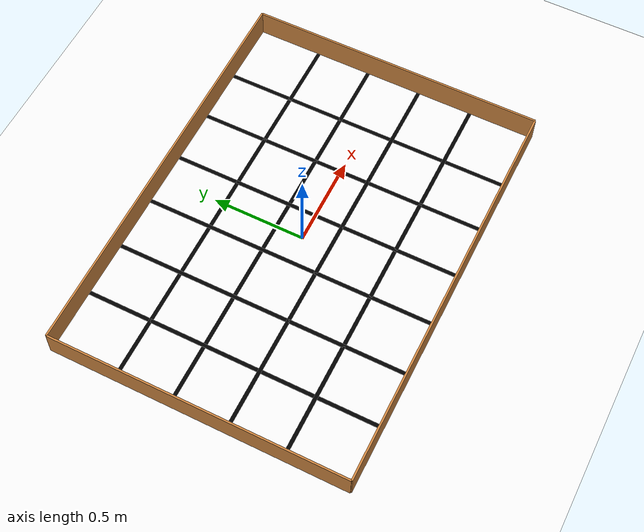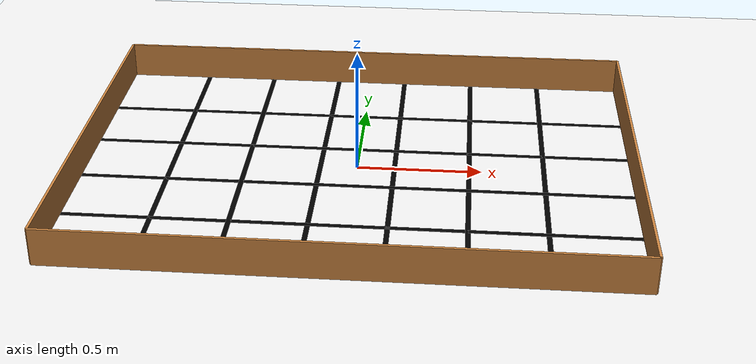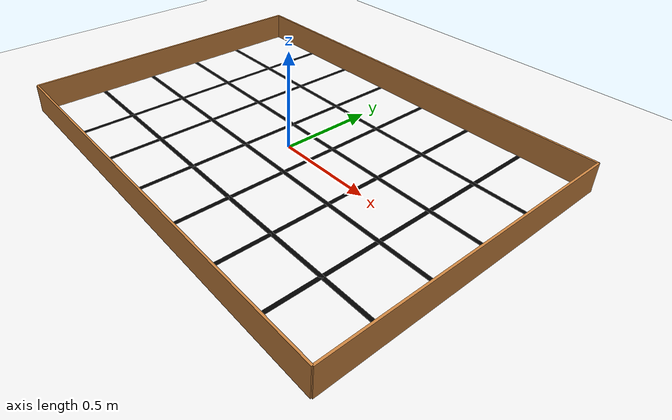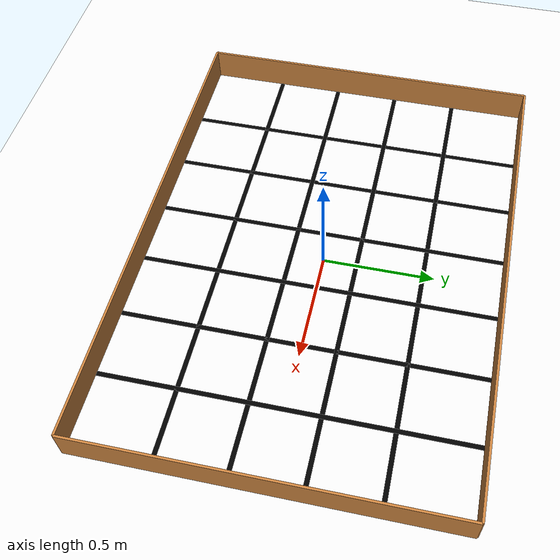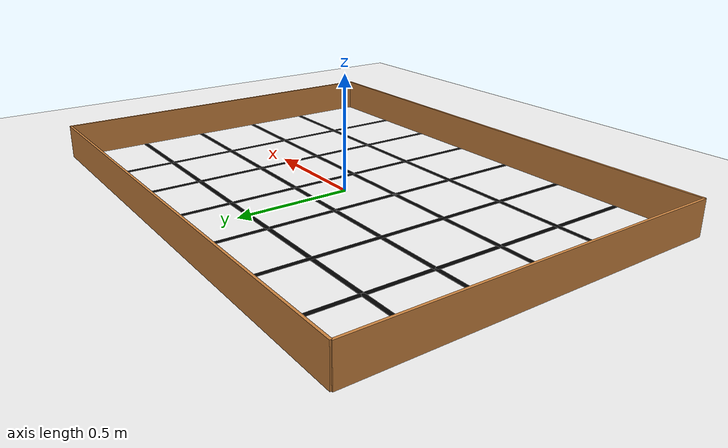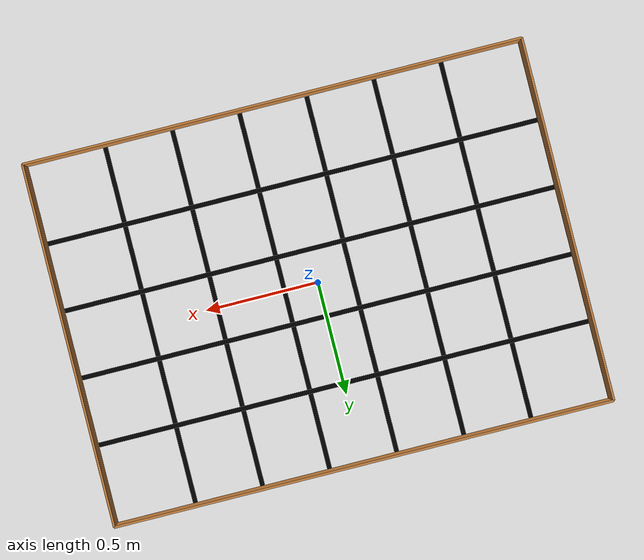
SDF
<?xml version="1.0"?>
<sdf version="1.7">
  <world name="peno_environment">

    <!-- Necessary plugins -->
    <physics name="1ms" type="ignored">
      <max_step_size>0.001</max_step_size>
      <real_time_factor>1.0</real_time_factor>
    </physics>
    <plugin
      filename="gz-sim-physics-system"
      name="gz::sim::systems::Physics">
    </plugin>
    <plugin
      filename="gz-sim-scene-broadcaster-system"
      name="gz::sim::systems::SceneBroadcaster">
    </plugin>
    <plugin
      filename="gz-sim-user-commands-system"
      name="gz::sim::systems::UserCommands">
    </plugin>
    <plugin
      filename="gz-sim-sensors-system"
      name="gz::sim::systems::Sensors">
      <render_engine>ogre2</render_engine>
    </plugin>

    <!-- Sun -->
    <light type="directional" name="sun">
      <cast_shadows>true</cast_shadows>
      <pose>0 4 10 0 0 0</pose>
      <diffuse>1 1 1 1</diffuse>
      <specular>0.5 0.5 0.5 1</specular>
      <attenuation>
        <range>1000</range>
        <constant>0.9</constant>
        <linear>0.01</linear>
        <quadratic>0.001</quadratic>
      </attenuation>
      <direction>-0.5 0.1 -0.9</direction>
    </light>

    <!-- Ground plane -->
    <model name="ground_plane">
      <static>true</static>
      <link name="link">
        <visual name="visual">
          <geometry>
            <plane>
              <normal>0 0 1</normal>
              <size>2.2 1.6</size>
            </plane>
          </geometry>
          <material>
            <ambient>1.0 1.0 1.0 1</ambient>
            <diffuse>0.95 0.95 0.95 1</diffuse>
            <specular>0.03 0.03 0.03 1</specular>
            <emissive>0.1 0.1 0.1 1</emissive>
          </material>
        </visual>
        <collision name="collision">
          <geometry>
            <plane>
              <normal>0 0 1</normal>
              <size>2.2 1.6</size>
            </plane>
          </geometry>
          <surface>
            <friction>
              <ode>
                <mu>0.7</mu> <!-- Static friction -->
                <mu2>0.5</mu2> <!-- Kinetic friction-->
              </ode>
            </friction>
          </surface>
        </collision>
      </link>
    </model>

    <!-- Walls -->
    <model name="wall_north">
      <static>true</static>
      <link name="link">
        <visual name="visual">
          <geometry>
            <box>
              <size>2.2 0.01 0.15</size>
            </box>
          </geometry>
          <pose>0 0.8 0.075 0 0 0</pose> <!-- North wall -->
          <material>
            <ambient>0.8 0.52 0.25 1</ambient> <!-- Light brown, like wood -->
            <diffuse>0.8 0.52 0.25 1</diffuse> <!-- Light brown, like wood -->
          </material>
        </visual>
        <collision name="collision">
          <geometry>
            <box>
              <size>2.2 0.01 0.15</size>
            </box>
          </geometry>
          <pose>0 0.8 0.075 0 0 0</pose> <!-- Same pose as visual -->
        </collision>
      </link>
    </model>

    <model name="wall_south">
      <static>true</static>
      <link name="link">
        <visual name="visual">
          <geometry>
            <box>
              <size>2.2 0.01 0.15</size>
            </box>
          </geometry>
          <pose>0 -0.8 0.075 0 0 0</pose> <!-- South wall -->
          <material>
            <ambient>0.8 0.52 0.25 1</ambient> <!-- Light brown, like wood -->
            <diffuse>0.8 0.52 0.25 1</diffuse> <!-- Light brown, like wood -->
          </material>
        </visual>
        <collision name="collision">
          <geometry>
            <box>
              <size>2.2 0.01 0.15</size>
            </box>
          </geometry>
          <pose>0 -0.8 0.075 0 0 0</pose> <!-- Same pose as visual -->
        </collision>
      </link>
    </model>

    <model name="wall_east">
      <static>true</static>
      <link name="link">
        <visual name="visual">
          <geometry>
            <box>
              <size>0.01 1.6 0.15</size>
            </box>
          </geometry>
          <pose>1.1 0 0.075 0 0 0</pose> <!-- East wall -->
          <material>
            <ambient>0.8 0.52 0.25 1</ambient> <!-- Light brown, like wood -->
            <diffuse>0.8 0.52 0.25 1</diffuse> <!-- Light brown, like wood -->
          </material>
        </visual>
        <collision name="collision">
          <geometry>
            <box>
              <size>0.01 1.6 0.15</size>
            </box>
          </geometry>
          <pose>1.1 0 0.075 0 0 0</pose> <!-- Same pose as visual -->
        </collision>
      </link>
    </model>

    <model name="wall_west">
      <static>true</static>
      <link name="link">
        <visual name="visual">
          <geometry>
            <box>
              <size>0.01 1.6 0.15</size>
            </box>
          </geometry>
          <pose>-1.1 0 0.075 0 0 0</pose> <!-- West wall -->
          <material>
            <ambient>0.8 0.52 0.25 1</ambient> <!-- Light brown, like wood -->
            <diffuse>0.8 0.52 0.25 1</diffuse> <!-- Light brown, like wood -->
          </material>
        </visual>
        <collision name="collision">
          <geometry>
            <box>
              <size>0.01 1.6 0.15</size>
            </box>
          </geometry>
          <pose>-1.1 0 0.075 0 0 0</pose> <!-- Same pose as visual -->
        </collision>
      </link>
    </model>

    <!-- Grid Lines -->
    <!-- Horizontal grid lines -->
    <model name="gridline_h2">
      <static>true</static>
      <link name="link">
        <visual name="visual">
          <geometry>
            <box>
              <size>2.2 0.02 0.001</size>
            </box>
          </geometry>
          <pose>0 -0.45 0 0 0 0</pose>
          <material>
            <ambient>0 0 0 1</ambient> <!-- Black -->
            <diffuse>0 0 0 1</diffuse> <!-- Black -->
          </material>
        </visual>
      </link>
    </model>

    <model name="gridline_h3">
      <static>true</static>
      <link name="link">
        <visual name="visual">
          <geometry>
            <box>
              <size>2.2 0.02 0.001</size>
            </box>
          </geometry>
          <pose>0 -0.15 0 0 0 0</pose>
          <material>
            <ambient>0 0 0 1</ambient> <!-- Black -->
            <diffuse>0 0 0 1</diffuse> <!-- Black -->
          </material>
        </visual>
      </link>
    </model>

    <model name="gridline_h4">
      <static>true</static>
      <link name="link">
        <visual name="visual">
          <geometry>
            <box>
              <size>2.2 0.02 0.001</size>
            </box>
          </geometry>
          <pose>0 0.15 0 0 0 0</pose>
          <material>
            <ambient>0 0 0 1</ambient> <!-- Black -->
            <diffuse>0 0 0 1</diffuse> <!-- Black -->
          </material>
        </visual>
      </link>
    </model>

    <model name="gridline_h5">
      <static>true</static>
      <link name="link">
        <visual name="visual">
          <geometry>
            <box>
              <size>2.2 0.02 0.001</size>
            </box>
          </geometry>
          <pose>0 0.45 0 0 0 0</pose>
          <material>
            <ambient>0 0 0 1</ambient> <!-- Black -->
            <diffuse>0 0 0 1</diffuse> <!-- Black -->
          </material>
        </visual>
      </link>
    </model>

    <!-- Vertical grid lines -->
    <model name="gridline_v1">
      <static>true</static>
      <link name="link">
        <visual name="visual">
          <geometry>
            <box>
              <size>0.02 1.6 0.001</size>
            </box>
          </geometry>
          <pose>0.15 0 0 0 0 0</pose>
          <material>
            <ambient>0 0 0 1</ambient> <!-- Black -->
            <diffuse>0 0 0 1</diffuse> <!-- Black -->
          </material>
        </visual>
      </link>
    </model>

    <model name="gridline_v2">
      <static>true</static>
      <link name="link">
        <visual name="visual">
          <geometry>
            <box>
              <size>0.02 1.6 0.001</size>
            </box>
          </geometry>
          <pose>-0.15 0 0 0 0 0</pose>
          <material>
            <ambient>0 0 0 1</ambient> <!-- Black -->
            <diffuse>0 0 0 1</diffuse> <!-- Black -->
          </material>
        </visual>
      </link>
    </model>

    <model name="gridline_v3">
      <static>true</static>
      <link name="link">
        <visual name="visual">
          <geometry>
            <box>
              <size>0.02 1.6 0.001</size>
            </box>
          </geometry>
          <pose>0.45 0 0 0 0 0</pose>
          <material>
            <ambient>0 0 0 1</ambient> <!-- Black -->
            <diffuse>0 0 0 1</diffuse> <!-- Black -->
          </material>
        </visual>
      </link>
    </model>

    <model name="gridline_v4">
      <static>true</static>
      <link name="link">
        <visual name="visual">
          <geometry>
            <box>
              <size>0.02 1.6 0.001</size>
            </box>
          </geometry>
          <pose>-0.45 0 0 0 0 0</pose>
          <material>
            <ambient>0 0 0 1</ambient> <!-- Black -->
            <diffuse>0 0 0 1</diffuse> <!-- Black -->
          </material>
        </visual>
      </link>
    </model>

    <model name="gridline_v7">
      <static>true</static>
      <link name="link">
        <visual name="visual">
          <geometry>
            <box>
              <size>0.02 1.6 0.001</size>
            </box>
          </geometry>
          <pose>0.75 0 0 0 0 0</pose>
          <material>
            <ambient>0 0 0 1</ambient> <!-- Black -->
            <diffuse>0 0 0 1</diffuse> <!-- Black -->
          </material>
        </visual>
      </link>
    </model>

    <model name="gridline_v9">
      <static>true</static>
      <link name="link">
        <visual name="visual">
          <geometry>
            <box>
              <size>0.02 1.6 0.001</size>
            </box>
          </geometry>
          <pose>-0.75 0 0 0 0 0</pose>
          <material>
            <ambient>0 0 0 1</ambient> <!-- Black -->
            <diffuse>0 0 0 1</diffuse> <!-- Black -->
          </material>
        </visual>
      </link>
    </model>

  </world>
</sdf>
